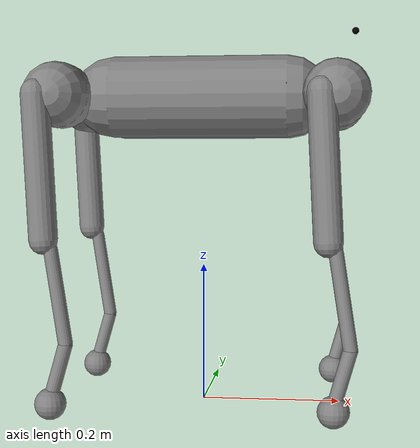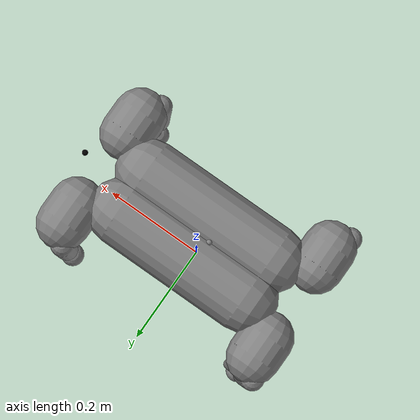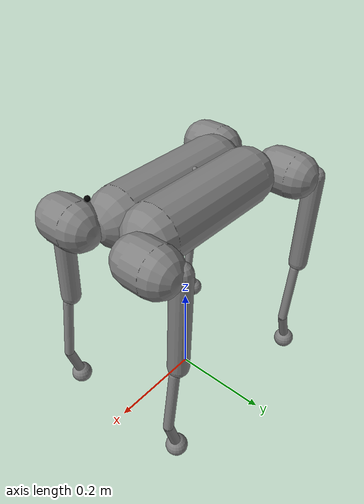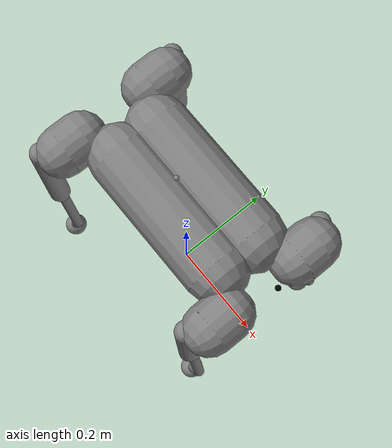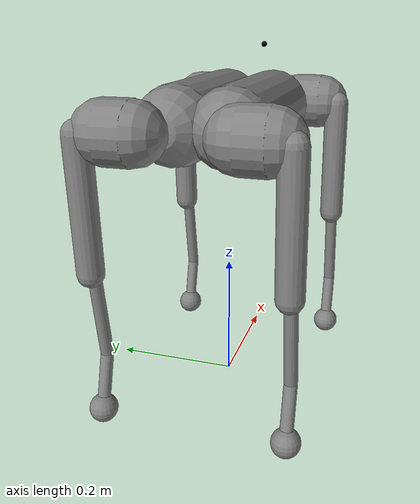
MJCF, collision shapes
<mujoco model="go2">
	<compiler angle="radian" meshdir="../assets" autolimits="true"/>

	<option iterations="1" ls_iterations="5" timestep="0.004" integrator="Euler">
	    <flag eulerdamp="disable"/>
	</option>

	<default>
        <default class="go2">
            <geom friction="0.6" contype="0" conaffinity="0" type="mesh"/>
            <joint axis="0 1 0" damping="0.0" armature="0.01"/>
            <default class="go2/abduction">
                <joint axis="1 0 0" range="-1.0472 1.0472" frictionloss="0.35"/>
            </default>
            <default class="go2/hip">
                <default class="go2/front_hip">
                    <joint range="-1.5708 3.4907" frictionloss="0.35"/>
                </default>
                <default class="go2/back_hip">
                    <joint range="-0.5236 4.5379" frictionloss="0.35"/>
                </default>
            </default>
            <default class="go2/knee">
                <joint range="-2.7227 -0.83776" frictionloss="1.35"/>
            </default>
            <default class="go2/foot">
                <site pos="-0.002 0 -0.213"/>
            </default>
            <default class="go2/collision">
                <geom group="3" contype="0" conaffinity="2"/>
				<default class="go2/collision/torso">
					<geom type="capsule" size="0.058 0.125" quat="1 0 1 0"/>
					<default class="go2/collision/torso/left">
						<geom pos="0 0.04 0"/>
					</default>
					<default class="go2/collision/torso/right">
						<geom pos="0 -0.04 0"/>
					</default>
				</default>
				<default class="go2/collision/hip">
					<geom type="capsule" size="0.046 0.02" pos="0 0.045 0" quat="1 1 0 0"/>
					<default class="go2/collision/hip/left">
						<geom pos="0 0.045 0"/>
					</default>
					<default class="go2/collision/hip/right">
						<geom pos="0 -0.045 0"/>
					</default>
				</default>
				<default class="go2/collision/thigh">
					<geom type="capsule" size="0.02" fromto="-0.02 0 0 -0.01 0 -0.2"/>
				</default>
				<default class="go2/collision/calf">
					<geom type="capsule" size="0.01"/>
					<default class="go2/collision/calf/upper">
						<geom type="capsule" size="0.01" fromto="0 0 0 0.02 0 -0.13"/>
					</default>
					<default class="go2/collision/calf/lower">
						<geom fromto="0.02 0 -0.13 0 0 -0.2"/>
					</default>
				</default>
                <default class="go2/collision/foot">
                    <geom type="sphere" size="0.022" pos="-0.002 0 -0.213" solimp="0.9 0.95 0.022" condim="6" friction="0.8 0.02 0.01"/>
                </default>
            </default>
        </default>
	</default>

	<asset>
        <material name="metal" rgba=".9 .95 .95 1"/>
        <material name="black" rgba="0 0 0 1"/>
        <material name="white" rgba="1 1 1 1"/>
        <material name="gray" rgba="0.671705 0.692426 0.774270 1"/>
        <mesh file="base_0.obj"/>
        <mesh file="base_1.obj"/>
        <mesh file="base_2.obj"/>
        <mesh file="base_3.obj"/>
        <mesh file="base_4.obj"/>
        <mesh file="hip_0.obj"/>
        <mesh file="hip_1.obj"/>
        <mesh file="thigh_0.obj"/>
        <mesh file="thigh_1.obj"/>
        <mesh file="thigh_mirror_0.obj"/>
        <mesh file="thigh_mirror_1.obj"/>
        <mesh file="calf_0.obj"/>
        <mesh file="calf_1.obj"/>
        <mesh file="calf_mirror_0.obj"/>
        <mesh file="calf_mirror_1.obj"/>
        <mesh file="foot.obj"/>
		<mesh name="zedm_mesh" file="zedmini_camera.obj" scale="0.001 0.001 0.001"/>
	</asset>

	<worldbody>
		<body name="base_link" pos="0 0 0.445" childclass="go2">
			<inertial pos="0.021112 0 -0.005366" quat="-0.000543471 0.713435 -0.00173769 0.700719"
				mass="6.921"
				diaginertia="0.107027 0.0980771 0.0244531"/>
			<freejoint/>
			<geom mesh="base_0" material="black" class="go2"/>
			<geom mesh="base_1" material="black" class="go2"/>
			<geom mesh="base_2" material="black" class="go2"/>
			<geom mesh="base_3" material="white" class="go2"/>
			<geom mesh="base_4" material="gray" class="go2"/>
			<geom name="left_torso_collision" class="go2/collision/torso/left"/>
			<geom name="right_torso_collision" class="go2/collision/torso/right"/>
			<site name="imu" pos="-0.02557 0 0.04232"/>
			<geom type="mesh" mesh="zedm_mesh" pos="0.21 0 0.05" euler="1.5708 0 0" contype="0" conaffinity="0" group="2" material="black"/>
			<camera name="zedm_left_lens" pos="0.22 0.0315 0.05" xyaxes="0 -1 0 0 0 1" fovy="60" resolution="6 6"/>
			<camera name="zedm_right_lens" pos="0.22 -0.0315 0.05" xyaxes="0 -1 0 0 0 1" fovy="60" resolution="6 6"/>
			<site name="vicon_marker" pos="0.22 0 0.095" material="black"/>
			<body name="front_right_hip" pos="0.1934 -0.0465 0">
				<inertial pos="-0.0054 -0.00194 -0.000105" quat="0.498237 0.505462 0.499245 0.497014"
                    mass="0.678"
                    diaginertia="0.00088403 0.000596003 0.000479967"/>
				<joint name="front_right_hip_joint" class="go2/abduction"/>
				<geom mesh="hip_0" material="metal" class="go2" quat="4.63268e-05 1 0 0"/>
				<geom mesh="hip_1" material="gray" class="go2" quat="4.63268e-05 1 0 0"/>
				<geom name="front_right_hip_collision" class="go2/collision/hip/right"/>
				<body name="front_right_thigh" pos="0 -0.0955 0">
					<inertial pos="-0.00374 0.0223 -0.0327" quat="0.551623 -0.0200632 0.0847635 0.829533"
						mass="1.152"
						diaginertia="0.00594973 0.00584149 0.000878787"/>
					<joint name="front_right_thigh_joint" class="go2/front_hip"/>
					<geom mesh="thigh_mirror_0" material="metal" class="go2"/>
					<geom mesh="thigh_mirror_1" material="gray" class="go2"/>
					<geom name="front_right_thigh_collision" class="go2/collision/thigh"/>
					<body name="front_right_calf" pos="0 0 -0.213">
						<inertial pos="0.00629595 0.000622121 -0.141417"
                            quat="0.703508 -0.00450087 0.00154099 0.710672"
                            mass="0.241352" diaginertia="0.0014901 0.00146356 5.31397e-05"/>
						<joint name="front_right_calf_joint" class="go2/knee"/>
						<geom mesh="calf_mirror_0" material="gray" class="go2"/>
						<geom mesh="calf_mirror_1" material="black" class="go2"/>
						<geom pos="0 0 -0.213" mesh="foot" class="go2" material="black"/>
						<geom name="front_right_calf_upper_collision" class="go2/collision/calf/upper"/>
						<geom name="front_right_calf_lower_collision" class="go2/collision/calf/lower"/>
						<geom name="front_right_foot_collision" class="go2/collision/foot"/>
						<site name="front_right_foot" class="go2/foot"/>
					</body>
				</body>
			</body>
			<body name="front_left_hip" pos="0.1934 0.0465 0">
				<inertial pos="-0.0054 0.00194 -0.000105" quat="0.497014 0.499245 0.505462 0.498237"
                    mass="0.678"
                    diaginertia="0.00088403 0.000596003 0.000479967"/>
				<joint name="front_left_hip_joint" class="go2/abduction"/>
				<geom mesh="hip_0" material="metal" class="go2"/>
				<geom mesh="hip_1" material="gray" class="go2"/>
				<geom name="front_left_hip_collision" class="go2/collision/hip/left"/>
				<body name="front_left_thigh" pos="0 0.0955 0">
					<inertial pos="-0.00374 -0.0223 -0.0327" quat="0.829533 0.0847635 -0.0200632 0.551623"
						mass="1.152"
						diaginertia="0.00594973 0.00584149 0.000878787"/>
					<joint name="front_left_thigh_joint" class="go2/front_hip"/>
					<geom mesh="thigh_0" material="metal" class="go2"/>
					<geom mesh="thigh_1" material="gray" class="go2"/>
					<geom name="front_left_thigh_collision" class="go2/collision/thigh"/>
					<body name="front_left_calf" pos="0 0 -0.213">
						<inertial pos="0.00629595 -0.000622121 -0.141417"
                            quat="0.710672 0.00154099 -0.00450087 0.703508"
                            mass="0.241352" diaginertia="0.0014901 0.00146356 5.31397e-05"/>
						<joint name="front_left_calf_joint" class="go2/knee"/>
						<geom mesh="calf_0" material="gray" class="go2"/>
						<geom mesh="calf_1" material="black" class="go2"/>
						<geom pos="0 0 -0.213" mesh="foot" class="go2" material="black"/>
						<geom name="front_left_calf_upper_collision" class="go2/collision/calf/upper"/>
						<geom name="front_left_calf_lower_collision" class="go2/collision/calf/lower"/>
						<geom name="front_left_foot_collision" class="go2/collision/foot"/>
						<site name="front_left_foot" class="go2/foot"/>
					</body>
				</body>
			</body>
			<body name="hind_right_hip" pos="-0.1934 -0.0465 0">
				<inertial pos="0.0054 -0.00194 -0.000105" quat="0.499245 0.497014 0.498237 0.505462"
                    mass="0.678"
                    diaginertia="0.00088403 0.000596003 0.000479967"/>
				<joint name="hind_right_hip_joint" class="go2/abduction"/>
				<geom mesh="hip_0" material="metal" class="go2"
				    quat="2.14617e-09 4.63268e-05 4.63268e-05 -1"/>
				<geom mesh="hip_1" material="gray" class="go2"
					quat="2.14617e-09 4.63268e-05 4.63268e-05 -1"/>
				<geom name="hind_right_hip_collision" class="go2/collision/hip/right"/>
				<body name="hind_right_thigh" pos="0 -0.0955 0">
					<inertial pos="-0.00374 0.0223 -0.0327" quat="0.551623 -0.0200632 0.0847635 0.829533"
						mass="1.152"
						diaginertia="0.00594973 0.00584149 0.000878787"/>
					<joint name="hind_right_thigh_joint" class="go2/back_hip"/>
					<geom mesh="thigh_mirror_0" material="metal" class="go2"/>
					<geom mesh="thigh_mirror_1" material="gray" class="go2"/>
					<geom name="hind_right_thigh_collision" class="go2/collision/thigh"/>
					<body name="hind_right_calf" pos="0 0 -0.213">
						<inertial pos="0.00629595 0.000622121 -0.141417"
                            quat="0.703508 -0.00450087 0.00154099 0.710672"
                            mass="0.241352" diaginertia="0.0014901 0.00146356 5.31397e-05"/>
						<joint name="hind_right_calf_joint" class="go2/knee"/>
						<geom mesh="calf_mirror_0" material="gray" class="go2"/>
						<geom mesh="calf_mirror_1" material="black" class="go2"/>
						<geom pos="0 0 -0.213" mesh="foot" class="go2" material="black"/>
						<geom name="hind_right_calf_upper_collision" class="go2/collision/calf/upper"/>
						<geom name="hind_right_calf_lower_collision" class="go2/collision/calf/lower"/>
						<geom name="hind_right_foot_collision" class="go2/collision/foot"/>
						<site name="hind_right_foot" class="go2/foot"/>
					</body>
				</body>
			</body>
			<body name="hind_left_hip" pos="-0.1934 0.0465 0">
				<inertial pos="0.0054 0.00194 -0.000105" quat="0.505462 0.498237 0.497014 0.499245"
                    mass="0.678"
                    diaginertia="0.00088403 0.000596003 0.000479967"/>
				<joint name="hind_left_hip_joint" class="go2/abduction"/>
				<geom mesh="hip_0" material="metal" class="go2" quat="4.63268e-05 0 1 0"/>
				<geom mesh="hip_1" material="gray" class="go2" quat="4.63268e-05 0 1 0"/>
				<geom name="hind_left_hip_collision" class="go2/collision/hip/left"/>
				<body name="hind_left_thigh" pos="0 0.0955 0">
					<inertial pos="-0.00374 -0.0223 -0.0327" quat="0.829533 0.0847635 -0.0200632 0.551623"
						mass="1.152"
						diaginertia="0.00594973 0.00584149 0.000878787"/>
					<joint name="hind_left_thigh_joint" class="go2/back_hip"/>
					<geom mesh="thigh_0" material="metal" class="go2"/>
					<geom mesh="thigh_1" material="gray" class="go2"/>
					<geom name="hind_left_thigh_collision" class="go2/collision/thigh"/>
					<body name="hind_left_calf" pos="0 0 -0.213">
						<inertial pos="0.00629595 -0.000622121 -0.141417"
                            quat="0.710672 0.00154099 -0.00450087 0.703508"
                            mass="0.241352" diaginertia="0.0014901 0.00146356 5.31397e-05"/>
						<joint name="hind_left_calf_joint" class="go2/knee"/>
						<geom mesh="calf_0" material="gray" class="go2"/>
						<geom mesh="calf_1" material="black" class="go2"/>
						<geom pos="0 0 -0.213" mesh="foot" class="go2" material="black"/>
						<geom name="hind_left_calf_upper_collision" class="go2/collision/calf/upper"/>
						<geom name="hind_left_calf_lower_collision" class="go2/collision/calf/lower"/>
						<geom name="hind_left_foot_collision" class="go2/collision/foot"/>
						<site name="hind_left_foot" class="go2/foot"/>
					</body>
				</body>
			</body>
		</body>
	</worldbody>

	<contact>
        <pair name="right_front_foot_floor_contact" geom1="front_right_foot_collision" geom2="floor" solref="0.01 1" solimp="0.9 .95 0.022" condim="3" friction="0.8 0.8 0.02 0.01 0.01"/>
		<pair name="right_hind_foot_floor_contact" geom1="hind_right_foot_collision" geom2="floor" solref="0.01 1" solimp="0.9 .95 0.022" condim="3" friction="0.8 0.8 0.02 0.01 0.01"/>
		<pair name="left_front_foot_floor_contact" geom1="front_left_foot_collision" geom2="floor" solref="0.01 1" solimp="0.9 .95 0.022" condim="3" friction="0.8 0.8 0.02 0.01 0.01"/>
		<pair name="left_hind_foot_floor_contact" geom1="hind_left_foot_collision" geom2="floor" solref="0.01 1" solimp="0.9 .95 0.022" condim="3" friction="0.8 0.8 0.02 0.01 0.01"/>
    </contact>

	<sensor>
		<!-- IMU: -->
		<gyro name="imu_gyro" site="imu"/>
		<framequat name="imu_orientation" objtype="site" objname="imu"/>
		<accelerometer name="imu_acceleration" site="imu"/>

		<!-- State Estimator: -->
		<velocimeter name="local_linear_velocity" site="imu"/>
		<framepos name="imu_position" objtype="site" objname="imu"/>
		<framelinvel name="front_right_global_linear_velocity" objtype="site" objname="front_right_foot"/>
		<framelinvel name="front_left_global_linear_velocity" objtype="site" objname="front_left_foot"/>
		<framelinvel name="hind_right_global_linear_velocity" objtype="site" objname="hind_right_foot"/>
		<framelinvel name="hind_left_global_linear_velocity" objtype="site" objname="hind_left_foot"/>
		<framepos name="front_right_foot_position" objtype="site" objname="front_right_foot" reftype="site" refname="imu"/>
		<framepos name="front_left_foot_position" objtype="site" objname="front_left_foot" reftype="site" refname="imu"/>
		<framepos name="hind_right_foot_position" objtype="site" objname="hind_right_foot" reftype="site" refname="imu"/>
		<framepos name="hind_left_foot_position" objtype="site" objname="hind_left_foot" reftype="site" refname="imu"/>

		<!-- Globals: -->
		<framezaxis name="upvector" objtype="site" objname="imu"/>
		<framexaxis name="forwardvector" objtype="site" objname="imu"/>
		<framelinvel name="global_linear_velocity" objtype="site" objname="imu"/>
		<frameangvel name="global_angular_velocity" objtype="site" objname="imu"/>
	</sensor>

</mujoco>
